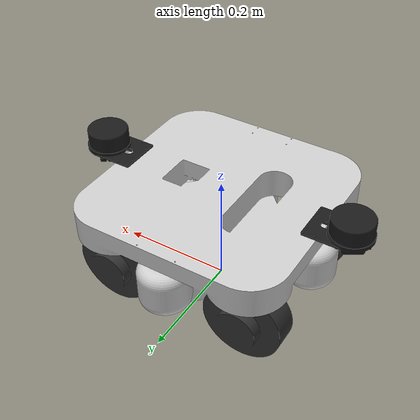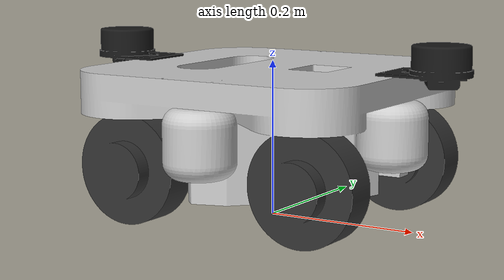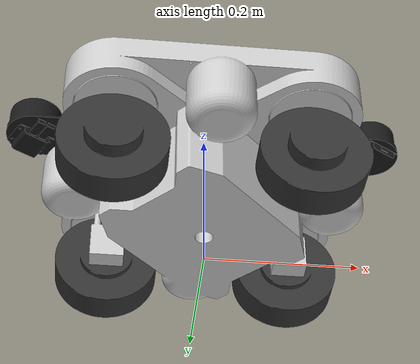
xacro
<?xml version="1.0"?>
<robot name="x40a" xmlns:xacro="http://www.ros.org/wiki/xacro">

   <xacro:include filename="$(find fwdsrover_description)/urdf/materials.xacro"/>
   <xacro:include filename="$(find fwdsrover_description)/urdf/x40a.gazebo"/>
   <xacro:include filename="$(find fwdsrover_description)/urdf/x40a.ros2_control.xacro"/>

   <xacro:include filename="$(find vs_rover_options_description)/urdf/lrf/tg30_x40a.xacro" />

  <link name="base_footprint" />

  <link name="base_link">
    <inertial>
      <origin xyz="0 0 0" rpy="0 0 0"/>
      <mass value="23.5"/>
      <inertia ixx="0.0552351826" ixy="0.0000793656873" ixz="-0.0000990264311" iyy="0.0549047615" iyz="0.0000320295012" izz="0.0400670354"/>
  </inertial>
    <visual>
      <origin xyz="0 0 0" rpy="0 0 0"/>
      <geometry>
        <mesh filename="package://fwdsrover_description/meshes/base_link.stl" scale="0.001 0.001 0.001"/>
      </geometry>
      <material name="silver"/>
    </visual>
    <collision>
      <origin xyz="0 0 0" rpy="0 0 0"/>
      <geometry>
        <mesh filename="package://fwdsrover_description/meshes/base_link.stl" scale="0.001 0.001 0.001"/>
      </geometry>
    </collision>
  </link>

<link name="front_left_joint_1">
    <inertial>
      <origin xyz="0 0 0" rpy="0 0 180"/>
      <mass value="0.005"/>
      <inertia ixx="0.02" ixy="0.0" ixz="0.0" iyy="0.02" iyz="0.0" izz="0.02"/>
  </inertial>
    <visual>
      <origin xyz="0 0 0" rpy="0 0 0"/>
      <geometry>
        <mesh filename="package://fwdsrover_description/meshes/joint.stl" scale="0.001 0.001 0.001"/>
      </geometry>
      <material name="silver"/>
    </visual>
    <collision>
      <origin xyz="0 0 0" rpy="0 0 0"/>
      <geometry>
        <mesh filename="package://fwdsrover_description/meshes/joint.stl" scale="0.001 0.001 0.001"/>
      </geometry>
    </collision>
  </link>

<link name="front_left_sus_1">
    <inertial>
      <origin xyz="0 0 0" rpy="0 0 0"/>
      <mass value="0.005"/>
      <inertia ixx="0.02" ixy="0.0" ixz="0.0" iyy="0.02" iyz="0.0" izz="0.02"/>
  </inertial>
    <visual>
      <origin xyz="0 0 0" rpy="0 0 0"/>
      <geometry>
        <mesh filename="package://fwdsrover_description/meshes/sus.stl" scale="0.001 0.001 0.001"/>
      </geometry>
      <material name="silver"/>
    </visual>
    <collision>
      <origin xyz="0 0 0" rpy="0 0 0"/>
      <geometry>
        <mesh filename="package://fwdsrover_description/meshes/sus.stl" scale="0.001 0.001 0.001"/>
      </geometry>
    </collision>
  </link>

<link name="front_left_wheel_1">
    <inertial>
      <origin xyz="0 0 0" rpy="0 0 0"/>
      <mass value="1.239858"/>
      <inertia ixx="0.000349732561" ixy="0.0000000000000636727503" ixz="0.0" iyy="0.000234227030" iyz="-0.00000000291379755" izz="0.000233605444"/>
  </inertial>
    <visual>
      <origin xyz="0 0 0" rpy="0 0 0"/>
      <geometry>
        <mesh filename="package://fwdsrover_description/meshes/wheel.stl" scale="0.001 0.001 0.001"/>
      </geometry>
      <material name="dark_grey"/>
    </visual>
    <collision>
      <origin xyz="0 0 0" rpy="0 0 0"/>
      <geometry>
        <mesh filename="package://fwdsrover_description/meshes/wheel.stl" scale="0.001 0.001 0.001"/>
      </geometry>
    </collision>
  </link>

<link name="front_right_joint_1">
    <inertial>
      <origin xyz="0 0 0" rpy="0 0 0"/>
      <mass value="0.005"/>
      <inertia ixx="0.02" ixy="0.0" ixz="0.0" iyy="0.02" iyz="0.0" izz="0.02"/>
  </inertial>
    <visual>
      <origin xyz="0 0 0" rpy="0 0 0"/>
      <geometry>
        <mesh filename="package://fwdsrover_description/meshes/joint.stl" scale="0.001 0.001 0.001"/>
      </geometry>
      <material name="silver"/>
    </visual>
    <collision>
      <origin xyz="0 0 0" rpy="0 0 0"/>
      <geometry>
        <mesh filename="package://fwdsrover_description/meshes/joint.stl" scale="0.001 0.001 0.001"/>
      </geometry>
    </collision>
  </link>

<link name="front_right_sus_1">
    <inertial>
      <origin xyz="0 0 0" rpy="0 0 0"/>
      <mass value="0.005"/>
      <inertia ixx="0.02" ixy="0.0" ixz="0.0" iyy="0.02" iyz="0.0" izz="0.02"/>
  </inertial>
    <visual>
      <origin xyz="0 0 0" rpy="0 0 0"/>
      <geometry>
        <mesh filename="package://fwdsrover_description/meshes/sus.stl" scale="0.001 0.001 0.001"/>
      </geometry>
      <material name="silver"/>
    </visual>
    <collision>
      <origin xyz="0 0 0" rpy="0 0 0"/>
      <geometry>
        <mesh filename="package://fwdsrover_description/meshes/sus.stl" scale="0.001 0.001 0.001"/>
      </geometry>
    </collision>
  </link>

<link name="front_right_wheel_1">
    <inertial>
      <origin xyz="0 0 0" rpy="0 0 0"/>
      <mass value="1.239858"/>
      <inertia ixx="0.000349732561" ixy="0.0000000000000636727503" ixz="0.0" iyy="0.000234227030" iyz="-0.00000000291379755" izz="0.000233605444"/>
  </inertial>
    <visual>
      <origin xyz="0 0 0" rpy="0 0 0"/>
      <geometry>
        <mesh filename="package://fwdsrover_description/meshes/wheel.stl" scale="0.001 0.001 0.001"/>
      </geometry>
      <material name="dark_grey"/>
    </visual>
    <collision>
      <origin xyz="0 0 0" rpy="0 0 0"/>
      <geometry>
        <mesh filename="package://fwdsrover_description/meshes/wheel.stl" scale="0.001 0.001 0.001"/>
      </geometry>
    </collision>
  </link>

<link name="back_right_joint_1">
    <inertial>
      <origin xyz="0 0 0" rpy="0 0 0"/>
      <mass value="0.005"/>
      <inertia ixx="0.02" ixy="0.0" ixz="0.0" iyy="0.02" iyz="0.0" izz="0.02"/>
  </inertial>
    <visual>
      <origin xyz="0 0 0" rpy="0 0 0"/>
      <geometry>
        <mesh filename="package://fwdsrover_description/meshes/joint.stl" scale="0.001 0.001 0.001"/>
      </geometry>
      <material name="silver"/>
    </visual>
    <collision>
      <origin xyz="0 0 0" rpy="0 0 0"/>
      <geometry>
        <mesh filename="package://fwdsrover_description/meshes/joint.stl" scale="0.001 0.001 0.001"/>
      </geometry>
    </collision>
  </link>

<link name="back_right_sus_1">
    <inertial>
      <origin xyz="0 0 0" rpy="0 0 0"/>
      <mass value="0.005"/>
      <inertia ixx="0.02" ixy="0.0" ixz="0.0" iyy="0.02" iyz="0.0" izz="0.02"/>
  </inertial>
    <visual>
      <origin xyz="0 0 0" rpy="0 0 0"/>
      <geometry>
        <mesh filename="package://fwdsrover_description/meshes/sus.stl" scale="0.001 0.001 0.001"/>
      </geometry>
      <material name="silver"/>
    </visual>
    <collision>
      <origin xyz="0 0 0" rpy="0 0 0"/>
      <geometry>
        <mesh filename="package://fwdsrover_description/meshes/sus.stl" scale="0.001 0.001 0.001"/>
      </geometry>
    </collision>
  </link>

<link name="back_right_wheel_1">
    <inertial>
      <origin xyz="0 0 0" rpy="0 0 0"/>
      <mass value="1.239858"/>
      <inertia ixx="0.000349732561" ixy="0.0000000000000636727503" ixz="0.0" iyy="0.000234227030" iyz="-0.00000000291379755" izz="0.000233605444"/>
  </inertial>
    <visual>
      <origin xyz="0 0 0" rpy="0 0 0"/>
      <geometry>
        <mesh filename="package://fwdsrover_description/meshes/wheel.stl" scale="0.001 0.001 0.001"/>
      </geometry>
      <material name="dark_grey"/>
    </visual>
    <collision>
      <origin xyz="0 0 0" rpy="0 0 0"/>
      <geometry>
        <mesh filename="package://fwdsrover_description/meshes/wheel.stl" scale="0.001 0.001 0.001"/>
      </geometry>
    </collision>
  </link>

<link name="back_left_joint_1">
    <inertial>
      <origin xyz="0 0 0" rpy="0 0 0"/>
      <mass value="0.005"/>
      <inertia ixx="0.02" ixy="0.0" ixz="0.0" iyy="0.02" iyz="0.0" izz="0.02"/>
  </inertial>
    <visual>
      <origin xyz="0 0 0" rpy="0 0 0"/>
      <geometry>
        <mesh filename="package://fwdsrover_description/meshes/joint.stl" scale="0.001 0.001 0.001"/>
      </geometry>
      <material name="silver"/>
    </visual>
    <collision>
      <origin xyz="0 0 0" rpy="0 0 0"/>
      <geometry>
        <mesh filename="package://fwdsrover_description/meshes/joint.stl" scale="0.001 0.001 0.001"/>
      </geometry>
    </collision>
  </link>

<link name="back_left_sus_1">
    <inertial>
      <origin xyz="0 0 0" rpy="0 0 0"/>
      <mass value="0.005"/>
      <inertia ixx="0.02" ixy="0.0" ixz="0.0" iyy="0.02" iyz="0.0" izz="0.02"/>
  </inertial>
    <visual>
      <origin xyz="0 0 0" rpy="0 0 0"/>
      <geometry>
        <mesh filename="package://fwdsrover_description/meshes/sus.stl" scale="0.001 0.001 0.001"/>
      </geometry>
      <material name="silver"/>
    </visual>
    <collision>
      <origin xyz="0 0 0" rpy="0 0 0"/>
      <geometry>
        <mesh filename="package://fwdsrover_description/meshes/sus.stl" scale="0.001 0.001 0.001"/>
      </geometry>
    </collision>
  </link>

<link name="back_left_wheel_1">
    <inertial>
      <origin xyz="0 0 0" rpy="0 0 0"/>
      <mass value="1.239858"/>
      <inertia ixx="0.000349732561" ixy="0.0000000000000636727503" ixz="0.0" iyy="0.000234227030" iyz="-0.00000000291379755" izz="0.000233605444"/>
  </inertial>
    <visual>
      <origin xyz="0 0 0" rpy="0 0 0"/>
      <geometry>
        <mesh filename="package://fwdsrover_description/meshes/wheel.stl" scale="0.001 0.001 0.001"/>
      </geometry>
      <material name="dark_grey"/>
    </visual>
    <collision>
      <origin xyz="0 0 0" rpy="0 0 0"/>
      <geometry>
        <mesh filename="package://fwdsrover_description/meshes/wheel.stl" scale="0.001 0.001 0.001"/>
      </geometry>
    </collision>
  </link>

  <joint name="base_joint" type="fixed">
    <origin xyz="0 0 0" rpy="0 0 ${radians(-90)}"/>
    <parent link="base_footprint"/>
    <child link="base_link"/>
  </joint>

  <joint name="front_left_steering_joint" type="revolute">
    <origin xyz="-0.125 0.125 0.14" rpy="0.0 0.0 ${radians(0)}"/>
    <axis xyz="0 0 1"/>
    <parent link="base_link"/>
    <child link="front_left_joint_1"/>
    <limit lower="-3.14159" upper="3.14159" effort="3.55" velocity="1.0"/>
    <dynamics damping="0.1"/>
  </joint>

  <joint name="front_left_sus_joint" type="prismatic">
    <origin xyz="0.0 0.0 0.0" rpy="0.0 0.0 0.0"/>
    <axis xyz="0 0 1"/>
    <parent link="front_left_joint_1"/>
    <child link="front_left_sus_1"/>
    <limit lower="-0.0135" upper="0.0135" effort="300" velocity="1.0"/>
    <dynamics damping="522.3"/>
  </joint>

  <joint name="front_left_wheel_joint" type="continuous">
    <origin xyz="0.0 0.0 -0.07" rpy="0.0 0.0 0.0"/>
    <axis xyz="-1 0 0"/>
    <parent link="front_left_sus_1"/>
    <child link="front_left_wheel_1"/>
    <limit effort="10" velocity="50000"/>
    <dynamics damping="0.02"/>
  </joint>

  <joint name="front_right_steering_joint" type="revolute">
    <origin xyz="0.125 0.125 0.14" rpy="0.0 0.0 ${radians(180)}"/>
    <axis xyz="0 0 1"/>
    <parent link="base_link"/>
    <child link="front_right_joint_1"/>
    <limit lower="-3.14159" upper="3.14159" effort="3.55" velocity="1.0"/>
    <dynamics damping="0.1"/>
  </joint>

  <joint name="front_right_sus_joint" type="prismatic">
    <origin xyz="0.0 0.0 0.0" rpy="0.0 0.0 0.0"/>
    <axis xyz="0 0 1"/>
    <parent link="front_right_joint_1"/>
    <child link="front_right_sus_1"/>
    <limit lower="-0.0135" upper="0.0135" effort="300" velocity="1.0"/>
    <dynamics damping="522.3"/>
  </joint>

  <joint name="front_right_wheel_joint" type="continuous">
    <origin xyz="0.0 0.0 -0.07" rpy="0.0 0.0 0.0"/>
    <axis xyz="1 0 0"/>
    <parent link="front_right_sus_1"/>
    <child link="front_right_wheel_1"/>
    <limit effort="10" velocity="50000"/>
    <dynamics damping="0.02"/>
  </joint>

  <joint name="back_right_steering_joint" type="revolute">
    <origin xyz="0.125 -0.125 0.14" rpy="0.0 0.0 ${radians(180)}"/>
    <axis xyz="0 0 1"/>
    <parent link="base_link"/>
    <child link="back_right_joint_1"/>
    <limit lower="-3.14159" upper="3.14159" effort="3.55" velocity="1.0"/>
    <dynamics damping="0.1"/>
  </joint>

  <joint name="back_right_sus_joint" type="prismatic">
    <origin xyz="0.0 0.0 0.0" rpy="0.0 0.0 0.0"/>
    <axis xyz="0 0 1"/>
    <parent link="back_right_joint_1"/>
    <child link="back_right_sus_1"/>
    <limit lower="-0.0135" upper="0.0135" effort="300" velocity="1.0"/>
    <dynamics damping="522.3"/>
  </joint>

  <joint name="back_right_wheel_joint" type="continuous">
    <origin xyz="0.0 0.0 -0.07" rpy="0.0 0.0 0.0"/>
    <axis xyz="1 0 0"/>
    <parent link="back_right_sus_1"/>
    <child link="back_right_wheel_1"/>
    <limit effort="10" velocity="50000"/>
    <dynamics damping="0.02"/>
  </joint>

  <joint name="back_left_steering_joint" type="revolute">
    <origin xyz="-0.125 -0.125 0.14" rpy="0.0 0.0 ${radians(0)}"/>
    <axis xyz="0 0 1"/>
    <parent link="base_link"/>
    <child link="back_left_joint_1"/>
    <limit lower="-3.14159" upper="3.14159" effort="3.55" velocity="1.0"/>
    <dynamics damping="0.1"/>
  </joint>

  <joint name="back_left_sus_joint" type="prismatic">
    <origin xyz="0.0 0.0 0.0" rpy="0.0 0.0 0.0"/>
    <axis xyz="0 0 1"/>
    <parent link="back_left_joint_1"/>
    <child link="back_left_sus_1"/>
    <limit lower="-0.0135" upper="0.0135" effort="300" velocity="1.0"/>
    <dynamics damping="522.3"/>
  </joint>

  <joint name="back_left_wheel_joint" type="continuous">
    <origin xyz="0.0 0.0 -0.07" rpy="0.0 0.0 0.0"/>
    <axis xyz="-1 0 0"/>
    <parent link="back_left_sus_1"/>
    <child link="back_left_wheel_1"/>
    <limit effort="10" velocity="50000"/>
    <dynamics damping="0.02"/>
  </joint>

  <xacro:x40a_ros2_control/>
  <xacro:x40a_gazebo/>
</robot>

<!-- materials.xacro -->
<robot name="materials" xmlns:xacro="http://www.ros.org/wiki/xacro">

  <material name="silver">
    <color rgba="0.800 0.800 0.800 1.000" />
  </material>

  <material name="dark_silver">
    <color rgba="0.400 0.400 0.400 1.000" />
  </material>

  <material name="dark_grey">
    <color rgba="0.200 0.200 0.200 1.000" />
  </material>

  <material name="black">
    <color rgba="0.100 0.100 0.100 1.000" />
  </material>

</robot>

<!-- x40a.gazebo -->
<robot name="x40a" xmlns:xacro="http://www.ros.org/wiki/xacro">
  <xacro:macro name="x40a_gazebo">

    <xacro:property name="body_color"  value="Gazebo/Silver"/>
    <xacro:property name="wheel_color" value="Gazebo/DarkGrey"/>

    <gazebo>
      <plugin name="gazebo_ros2_control" filename="libgazebo_ros2_control.so">
        <robot_param>robot_description</robot_param>
        <robot_param_node>robot_state_publisher</robot_param_node>
        <parameters>$(find fwdsrover_description)/params/controllers.yaml</parameters>
      </plugin>
    </gazebo>

    <gazebo reference="base_link">
      <material>${body_color}</material>
      <mu1>0.01</mu1>
      <mu2>0.01</mu2>
      <self_collide>true</self_collide>
      <turnGravityOff>false</turnGravityOff>
    </gazebo>

    <gazebo reference="front_left_joint_1">
      <material>${body_color}</material>
      <mu1>0.8</mu1>
      <mu2>0.8</mu2>
    </gazebo>

    <gazebo reference="front_left_sus_1">
      <material>${body_color}</material>
      <spring_reference>0.0</spring_reference>
      <spring_stiffness>19600.0</spring_stiffness>
      <implicitSpringDamper>true</implicitSpringDamper>
    </gazebo>

    <gazebo reference="front_left_wheel_1">
      <material>${wheel_color}</material>
      <mu1>1.0</mu1>
      <mu2>1.5</mu2>
      <slip1>0.1</slip1>
      <slip2>0.1</slip2>
      <kp>1e6</kp>
      <kd>1.0</kd>
    </gazebo>

    <gazebo reference="front_right_joint_1">
      <material>${body_color}</material>
      <mu1>0.8</mu1>
      <mu2>0.8</mu2>
    </gazebo>

    <gazebo reference="front_right_sus_1">
      <material>${body_color}</material>
      <spring_reference>0.0</spring_reference>
      <spring_stiffness>19600.0</spring_stiffness>
      <implicitSpringDamper>true</implicitSpringDamper>
    </gazebo>

    <gazebo reference="front_right_wheel_1">
      <material>${wheel_color}</material>
      <mu1>1.0</mu1>
      <mu2>1.5</mu2>
      <slip1>0.1</slip1>
      <slip2>0.1</slip2>
      <kp>1e6</kp>
      <kd>1.0</kd>

    </gazebo>

    <gazebo reference="back_right_joint_1">
      <material>${body_color}</material>
      <mu1>0.8</mu1>
      <mu2>0.8</mu2>
    </gazebo>

    <gazebo reference="back_right_sus_1">
      <material>${body_color}</material>
      <spring_reference>0.0</spring_reference>
      <spring_stiffness>19600.0</spring_stiffness>
      <implicitSpringDamper>true</implicitSpringDamper>
    </gazebo>

    <gazebo reference="back_right_wheel_1">
      <material>${wheel_color}</material>
      <mu1>1.0</mu1>
      <mu2>1.5</mu2>
      <slip1>0.1</slip1>
      <slip2>0.1</slip2>
      <kp>1e6</kp>
      <kd>1.0</kd>

    </gazebo>

    <gazebo reference="back_left_joint_1">
      <material>${body_color}</material>
      <mu1>0.8</mu1>
      <mu2>0.8</mu2>
    </gazebo>

    <gazebo reference="back_left_sus_1">
      <material>${body_color}</material>
      <spring_reference>0.0</spring_reference>
      <spring_stiffness>19600.0</spring_stiffness>
      <implicitSpringDamper>true</implicitSpringDamper>
    </gazebo>

    <gazebo reference="back_left_wheel_1">
      <material>${wheel_color}</material>
      <mu1>1.0</mu1>
      <mu2>1.5</mu2>
      <slip1>0.1</slip1>
      <slip2>0.1</slip2>
      <kp>1e6</kp>
      <kd>1.0</kd>

    </gazebo>

  </xacro:macro>
</robot>

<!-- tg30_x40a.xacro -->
<robot name="lrf_tg30_x40a" xmlns:xacro="http://ros.org/wiki/xacro">
  <xacro:include filename="$(find vs_rover_options_description)/urdf/lrf/tg30_x40a.gazebo" />

  <!-- placement of TG30 on Megarover Ver.3.0 -->
  <!-- the mesh origin is at centerline of laser, x-axis facing forward -->
  <xacro:property name="tg30_lrf_front_x_offset" value="0" />
  <xacro:property name="tg30_lrf_front_y_offset" value="0.234" />
  <xacro:property name="tg30_lrf_front_z_offset" value="0.2249" />
  <xacro:property name="tg30_lrf_back_x_offset" value="0.0" />
  <xacro:property name="tg30_lrf_back_y_offset" value="-0.234" />
  <xacro:property name="tg30_lrf_back_z_offset" value="0.2249" />
  <xacro:property name="tg30_center_of_mass_x" value="-0.004299" />
  <xacro:property name="tg30_center_of_mass_y" value="-0.000337" />
  <xacro:property name="tg30_center_of_mass_z" value="-0.018037" />

  <!-- front LRF sensor joints and links -->
  <joint name="front_lrf_joint" type="fixed">
    <parent link="base_link" />
    <child link="front_lrf_link" />
    <origin xyz="${tg30_lrf_front_x_offset} ${tg30_lrf_front_y_offset} ${tg30_lrf_front_z_offset}" rpy="0 0 ${pi/2}" />
  </joint>

  <link name="front_lrf_link">
    <inertial>
      <origin xyz="${tg30_center_of_mass_x} ${tg30_center_of_mass_y} ${tg30_center_of_mass_z}" rpy="0 0 0" />
      <mass value="0.200" />
      <inertia ixx="0.0001205" iyy="0.0001561" izz="0.0001977"
        ixy="0.00" iyz="0.00"
        ixz="0.00" />
    </inertial>
    <visual>
      <origin xyz="0 0 0" rpy="0 0 0" />
      <geometry>
        <mesh filename="package://vs_rover_options_description/meshes/lrf/tg30.stl" scale="0.001 0.001 0.001" />
      </geometry>
      <material name="black" />
    </visual>
    <collision>
      <origin xyz="0 0 0" rpy="0 0 0" />
      <geometry>
        <mesh filename="package://vs_rover_options_description/meshes/lrf/tg30.stl" scale="0.001 0.001 0.001" />
      </geometry>
    </collision>
  </link>

  <!-- back LRF sensor joints and links -->
  <joint name="back_lrf_joint" type="fixed">
    <parent link="base_link" />
    <child link="back_lrf_link" />
    <origin xyz="${tg30_lrf_back_x_offset} ${tg30_lrf_back_y_offset} ${tg30_lrf_back_z_offset}" rpy="0 0 ${-pi/2}" />
  </joint>

  <link name="back_lrf_link">
    <inertial>
      <origin xyz="${tg30_center_of_mass_x} ${tg30_center_of_mass_y} ${tg30_center_of_mass_z}" rpy="0 0 0" />
      <mass value="0.200" />
      <inertia ixx="0.0001205" iyy="0.0001561" izz="0.0001977"
        ixy="0.00" iyz="0.00"
        ixz="0.00" />
    </inertial>
    <visual>
      <origin xyz="0 0 0" rpy="0 0 0" />
      <geometry>
        <mesh filename="package://vs_rover_options_description/meshes/lrf/tg30.stl" scale="0.001 0.001 0.001" />
      </geometry>
      <material name="black" />
    </visual>
    <collision>
      <origin xyz="0 0 0" rpy="0 0 0" />
      <geometry>
        <mesh filename="package://vs_rover_options_description/meshes/lrf/tg30.stl" scale="0.001 0.001 0.001" />
      </geometry>
    </collision>
  </link>

</robot>

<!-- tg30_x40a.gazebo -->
<robot name="lrf_tg30_x40a" xmlns:xacro="http://www.ros.org/wiki/xacro">

  <xacro:arg name="front_laser_visual" default="false" />
  <xacro:arg name="back_laser_visual" default="false" />

  <xacro:property name="lrf_color" value="Gazebo/FlatBlack" />
  <xacro:property name="DEG_TO_RAD" value="0.01745329251994329577" />
  <xacro:property name="LRF_ANGLE" value="172" />

  <gazebo reference="front_lrf_link">
    <material>${lrf_color}</material>
    <selfCollide>true</selfCollide>
    <sensor name="tg30_lidar_front" type="ray">
        <always_on>true</always_on>
        <visualize>$(arg front_laser_visual)</visualize>
        <pose>0 0 0 0 0 0</pose>
        <update_rate>12</update_rate>
        <ray>
          <scan>
            <horizontal>
              <samples>360</samples>
              <resolution>1.0</resolution>
              <min_angle>${-LRF_ANGLE*DEG_TO_RAD}</min_angle>
              <max_angle>${ LRF_ANGLE*DEG_TO_RAD}</max_angle>
            </horizontal>
          </scan>
          <range>
            <min>0.05</min>
            <max>30.0</max>
            <resolution>0.01</resolution>
          </range>
          <noise>
            <type>gaussian</type>
            <mean>0.0</mean>
            <stddev>0.01</stddev>
          </noise>
        </ray>
        <plugin name="x40a_front_laserscan" filename="libgazebo_ros_ray_sensor.so">
          <ros>
            <remapping>~/out:=scan</remapping>
          </ros>
          <output_type>sensor_msgs/LaserScan</output_type>
          <frame_name>front_lrf_link</frame_name>
        </plugin>
      </sensor>
  </gazebo>

  <gazebo reference="back_lrf_link">
    <material>${lrf_color}</material>
    <selfCollide>true</selfCollide>
    <sensor name="tg30_lidar_back" type="ray">
        <always_on>true</always_on>
        <visualize>$(arg back_laser_visual)</visualize>
        <pose>0 0 0 0 0 0</pose>
        <update_rate>12</update_rate>
        <ray>
          <scan>
            <horizontal>
              <samples>360</samples>
              <resolution>1.0</resolution>
              <min_angle>${-LRF_ANGLE*DEG_TO_RAD}</min_angle>
              <max_angle>${ LRF_ANGLE*DEG_TO_RAD}</max_angle>
            </horizontal>
          </scan>
          <range>
            <min>0.05</min>
            <max>30.0</max>
            <resolution>0.01</resolution>
          </range>
          <noise>
            <type>gaussian</type>
            <mean>0.0</mean>
            <stddev>0.01</stddev>
          </noise>
        </ray>
        <plugin name="x40a_back_laserscan" filename="libgazebo_ros_ray_sensor.so">
          <ros>
            <remapping>~/out:=back_scan</remapping>
          </ros>
          <output_type>sensor_msgs/LaserScan</output_type>
          <frame_name>back_lrf_link</frame_name>
        </plugin>
      </sensor>
  </gazebo>

</robot>
